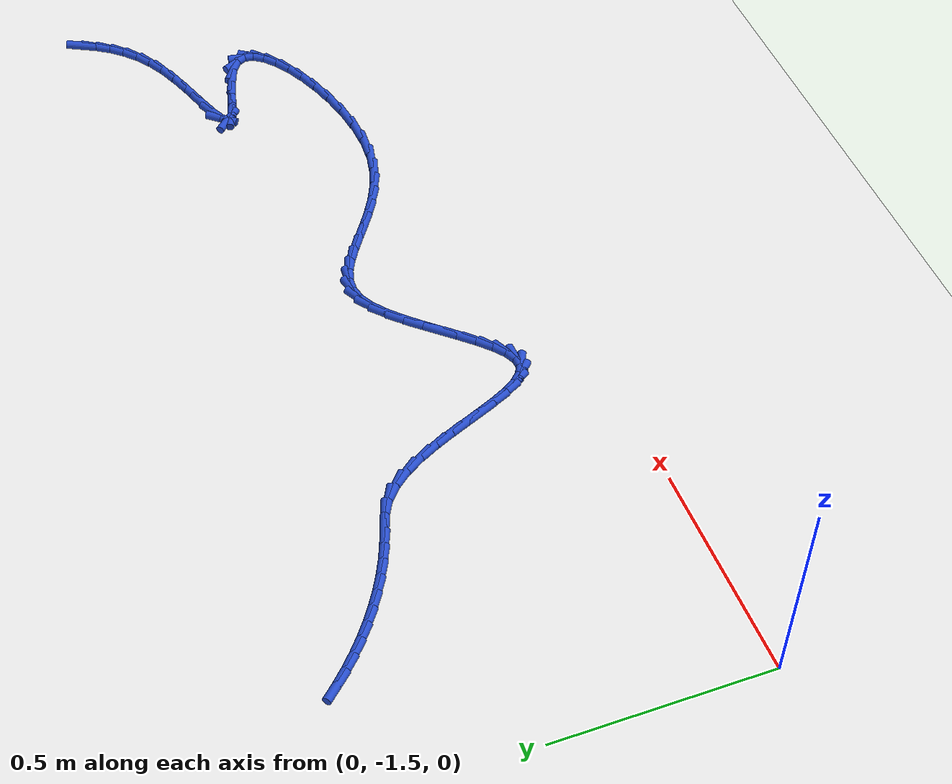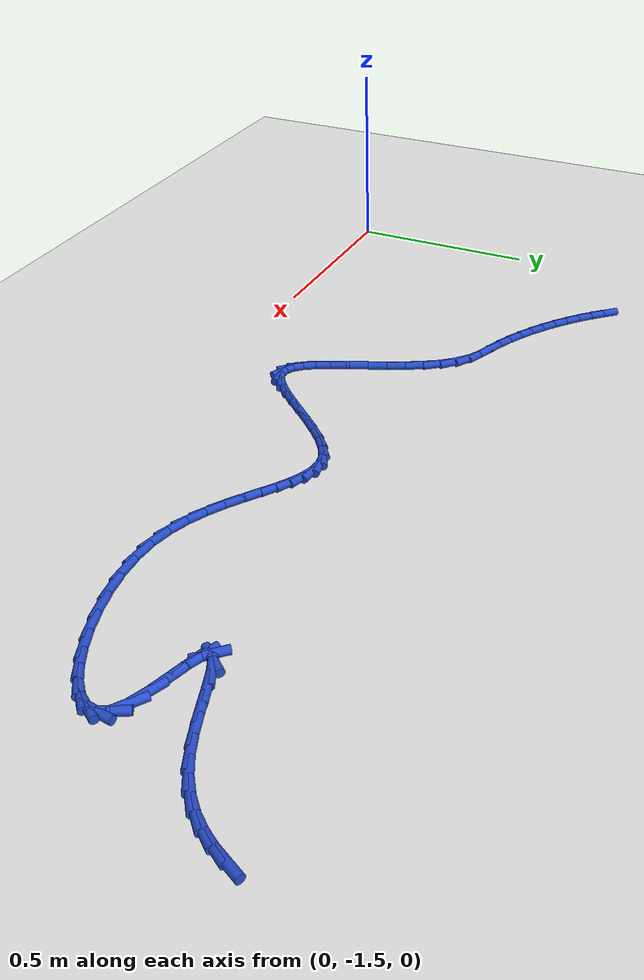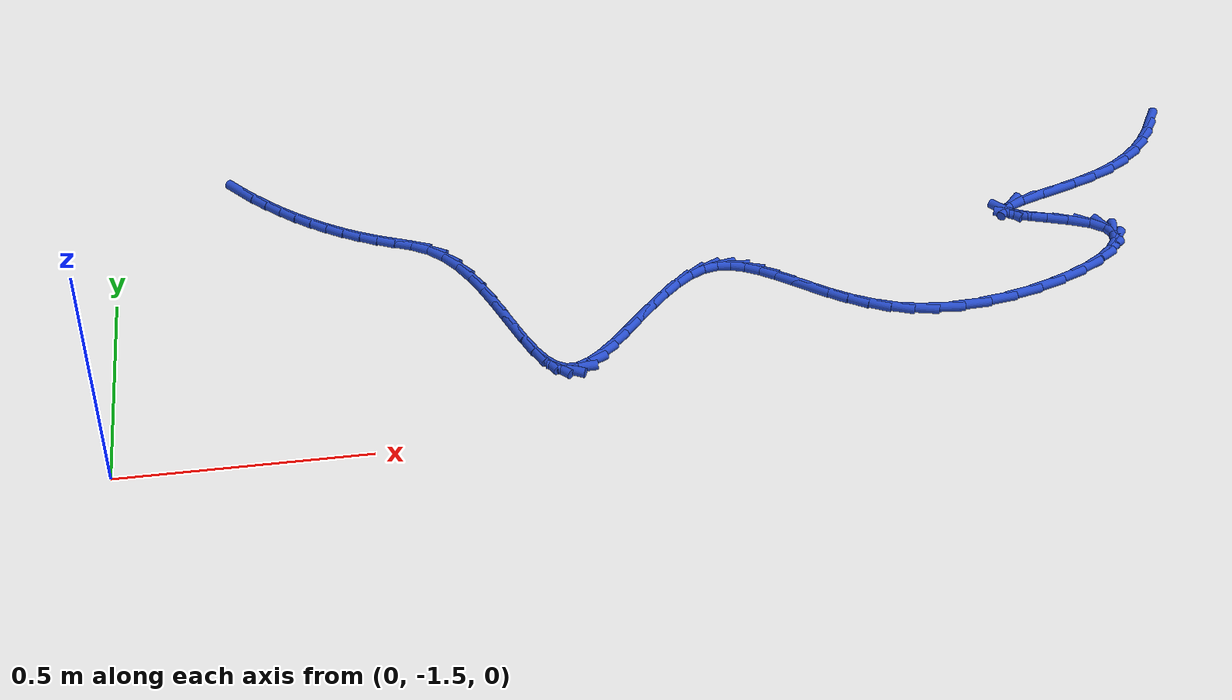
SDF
<sdf version="1.6">
 <world name="default">
  <model name="ground_plane">
   <static>1</static>
   <link name="link">
    <collision name="collision">
     <geometry><plane><normal>0 0 1</normal><size>100 100</size></plane></geometry>
     <surface><friction><ode><mu>100</mu><mu2>50</mu2></ode></friction></surface>
    </collision>
    <visual name="visual">
     <cast_shadows>0</cast_shadows>
     <geometry><plane><normal>0 0 1</normal><size>100 100</size></plane></geometry>
     <material>
      <script><uri>file://media/materials/scripts/gazebo.material</uri><name>Gazebo/WhiteGlow</name></script>
     </material>
    </visual>
   </link>
  </model>
  <model name="line">
   <link name="link_134">
    <pose>2.260077814180287 -0.6906924612458412 0.01 0 1.57 1.093525704193287</pose>
    <collision name="collision">
     <geometry><cylinder><radius>0.01</radius><length>0.08</length></cylinder></geometry>
    </collision>
    <visual name="visual">
     <material>
      <script><name>Gazebo/Blue</name><uri>file://media/materials/scripts/gazebo.material</uri></script>
     </material>
     <geometry><cylinder><radius>0.01</radius><length>0.08</length></cylinder></geometry>
    </visual>
   </link>
   <link name="link_135">
    <pose>2.243120066332404 -0.7234834476393496 0.01 0 1.57 0.9956169210976387</pose>
    <collision name="collision">
     <geometry><cylinder><radius>0.01</radius><length>0.08</length></cylinder></geometry>
    </collision>
    <visual name="visual">
     <material>
      <script><name>Gazebo/Blue</name><uri>file://media/materials/scripts/gazebo.material</uri></script>
     </material>
     <geometry><cylinder><radius>0.01</radius><length>0.08</length></cylinder></geometry>
    </visual>
   </link>
   <link name="link_136">
    <pose>2.222949267360653 -0.7545968063576652 0.01 0 1.57 0.8800103999019852</pose>
    <collision name="collision">
     <geometry><cylinder><radius>0.01</radius><length>0.08</length></cylinder></geometry>
    </collision>
    <visual name="visual">
     <material>
      <script><name>Gazebo/Blue</name><uri>file://media/materials/scripts/gazebo.material</uri></script>
     </material>
     <geometry><cylinder><radius>0.01</radius><length>0.08</length></cylinder></geometry>
    </visual>
   </link>
   <link name="link_137">
    <pose>2.1987522313748618 -0.7838677125144864 0.01 0 1.57 0.7539196230798381</pose>
    <collision name="collision">
     <geometry><cylinder><radius>0.01</radius><length>0.08</length></cylinder></geometry>
    </collision>
    <visual name="visual">
     <material>
      <script><name>Gazebo/Blue</name><uri>file://media/materials/scripts/gazebo.material</uri></script>
     </material>
     <geometry><cylinder><radius>0.01</radius><length>0.08</length></cylinder></geometry>
    </visual>
   </link>
   <link name="link_138">
    <pose>2.169715772484859 -0.8111313412235097 0.01 0 1.57 0.6262104765576222</pose>
    <collision name="collision">
     <geometry><cylinder><radius>0.01</radius><length>0.08</length></cylinder></geometry>
    </collision>
    <visual name="visual">
     <material>
      <script><name>Gazebo/Blue</name><uri>file://media/materials/scripts/gazebo.material</uri></script>
     </material>
     <geometry><cylinder><radius>0.01</radius><length>0.08</length></cylinder></geometry>
    </visual>
   </link>
   <link name="link_139">
    <pose>2.135026704800471 -0.8362228675984325 0.01 0 1.57 0.5050683813214808</pose>
    <collision name="collision">
     <geometry><cylinder><radius>0.01</radius><length>0.08</length></cylinder></geometry>
    </collision>
    <visual name="visual">
     <material>
      <script><name>Gazebo/Blue</name><uri>file://media/materials/scripts/gazebo.material</uri></script>
     </material>
     <geometry><cylinder><radius>0.01</radius><length>0.08</length></cylinder></geometry>
    </visual>
   </link>
   <link name="link_140">
    <pose>2.093871842431525 -0.8589774667529524 0.01 0 1.57 0.40317354967874675</pose>
    <collision name="collision">
     <geometry><cylinder><radius>0.01</radius><length>0.08</length></cylinder></geometry>
    </collision>
    <visual name="visual">
     <material>
      <script><name>Gazebo/Blue</name><uri>file://media/materials/scripts/gazebo.material</uri></script>
     </material>
     <geometry><cylinder><radius>0.01</radius><length>0.08</length></cylinder></geometry>
    </visual>
   </link>
   <link name="link_141">
    <pose>2.046233115714369 -0.8792972459943896 0.01 0 1.57 0.3458163592238009</pose>
    <collision name="collision">
     <geometry><cylinder><radius>0.01</radius><length>0.08</length></cylinder></geometry>
    </collision>
    <visual name="visual">
     <material>
      <script><name>Gazebo/Blue</name><uri>file://media/materials/scripts/gazebo.material</uri></script>
     </material>
     <geometry><cylinder><radius>0.01</radius><length>0.08</length></cylinder></geometry>
    </visual>
   </link>
   <link name="link_142">
    <pose>1.995961122814749 -0.8974099737291477 0.01 0 1.57 0.3268625783270204</pose>
    <collision name="collision">
     <geometry><cylinder><radius>0.01</radius><length>0.08</length></cylinder></geometry>
    </collision>
    <visual name="visual">
     <material>
      <script><name>Gazebo/Blue</name><uri>file://media/materials/scripts/gazebo.material</uri></script>
     </material>
     <geometry><cylinder><radius>0.01</radius><length>0.08</length></cylinder></geometry>
    </visual>
   </link>
   <link name="link_143">
    <pose>1.948081358380939 -0.9136423201294774 0.01 0 1.57 0.3480130493292259</pose>
    <collision name="collision">
     <geometry><cylinder><radius>0.01</radius><length>0.08</length></cylinder></geometry>
    </collision>
    <visual name="visual">
     <material>
      <script><name>Gazebo/Blue</name><uri>file://media/materials/scripts/gazebo.material</uri></script>
     </material>
     <geometry><cylinder><radius>0.01</radius><length>0.08</length></cylinder></geometry>
    </visual>
   </link>
   <link name="link_144">
    <pose>1.9076195859794642 -0.9283209780049353 0.01 0 1.57 0.44760740405013605</pose>
    <collision name="collision">
     <geometry><cylinder><radius>0.01</radius><length>0.08</length></cylinder></geometry>
    </collision>
    <visual name="visual">
     <material>
      <script><name>Gazebo/Blue</name><uri>file://media/materials/scripts/gazebo.material</uri></script>
     </material>
     <geometry><cylinder><radius>0.01</radius><length>0.08</length></cylinder></geometry>
    </visual>
   </link>
   <link name="link_145">
    <pose>1.8796015691768513 -0.9417726401650763 0.01 0 1.57 0.8718863694792514</pose>
    <collision name="collision">
     <geometry><cylinder><radius>0.01</radius><length>0.08</length></cylinder></geometry>
    </collision>
    <visual name="visual">
     <material>
      <script><name>Gazebo/Blue</name><uri>file://media/materials/scripts/gazebo.material</uri></script>
     </material>
     <geometry><cylinder><radius>0.01</radius><length>0.08</length></cylinder></geometry>
    </visual>
   </link>
   <link name="link_146">
    <pose>1.8690530715396236 -0.9543239994194561 0.01 0 1.57 -0.8100361347767994</pose>
    <collision name="collision">
     <geometry><cylinder><radius>0.01</radius><length>0.08</length></cylinder></geometry>
    </collision>
    <visual name="visual">
     <material>
      <script><name>Gazebo/Blue</name><uri>file://media/materials/scripts/gazebo.material</uri></script>
     </material>
     <geometry><cylinder><radius>0.01</radius><length>0.08</length></cylinder></geometry>
    </visual>
   </link>
   <link name="link_147">
    <pose>1.8804691249956074 -0.9663169192182226 0.01 0 1.57 -0.37304710965704696</pose>
    <collision name="collision">
     <geometry><cylinder><radius>0.01</radius><length>0.08</length></cylinder></geometry>
    </collision>
    <visual name="visual">
     <material>
      <script><name>Gazebo/Blue</name><uri>file://media/materials/scripts/gazebo.material</uri></script>
     </material>
     <geometry><cylinder><radius>0.01</radius><length>0.08</length></cylinder></geometry>
    </visual>
   </link>
   <link name="link_148">
    <pose>1.9110889003690217 -0.9783006673811888 0.01 0 1.57 -0.29434209963864494</pose>
    <collision name="collision">
     <geometry><cylinder><radius>0.01</radius><length>0.08</length></cylinder></geometry>
    </collision>
    <visual name="visual">
     <material>
      <script><name>Gazebo/Blue</name><uri>file://media/materials/scripts/gazebo.material</uri></script>
     </material>
     <geometry><cylinder><radius>0.01</radius><length>0.08</length></cylinder></geometry>
    </visual>
   </link>
   <link name="link_149">
    <pose>1.9528970394081127 -0.9909747092409539 0.01 0 1.57 -0.3038434600753206</pose>
    <collision name="collision">
     <geometry><cylinder><radius>0.01</radius><length>0.08</length></cylinder></geometry>
    </collision>
    <visual name="visual">
     <material>
      <script><name>Gazebo/Blue</name><uri>file://media/materials/scripts/gazebo.material</uri></script>
     </material>
     <geometry><cylinder><radius>0.01</radius><length>0.08</length></cylinder></geometry>
    </visual>
   </link>
   <link name="link_150">
    <pose>1.9977608323106262 -1.0050418645527033 0.01 0 1.57 -0.38587677177275365</pose>
    <collision name="collision">
     <geometry><cylinder><radius>0.01</radius><length>0.08</length></cylinder></geometry>
    </collision>
    <visual name="visual">
     <material>
      <script><name>Gazebo/Blue</name><uri>file://media/materials/scripts/gazebo.material</uri></script>
     </material>
     <geometry><cylinder><radius>0.01</radius><length>0.08</length></cylinder></geometry>
    </visual>
   </link>
   <link name="link_151">
    <pose>2.037547569274309 -1.021204953071622 0.01 0 1.57 -0.6150409497810844</pose>
    <collision name="collision">
     <geometry><cylinder><radius>0.01</radius><length>0.08</length></cylinder></geometry>
    </collision>
    <visual name="visual">
     <material>
      <script><name>Gazebo/Blue</name><uri>file://media/materials/scripts/gazebo.material</uri></script>
     </material>
     <geometry><cylinder><radius>0.01</radius><length>0.08</length></cylinder></geometry>
    </visual>
   </link>
   <link name="link_152">
    <pose>2.0643407982642725 -1.0401329987972223 0.01 0 1.57 -1.1120254504128737</pose>
    <collision name="collision">
     <geometry><cylinder><radius>0.01</radius><length>0.08</length></cylinder></geometry>
    </collision>
    <visual name="visual">
     <material>
      <script><name>Gazebo/Blue</name><uri>file://media/materials/scripts/gazebo.material</uri></script>
     </material>
     <geometry><cylinder><radius>0.01</radius><length>0.08</length></cylinder></geometry>
    </visual>
   </link>
   <link name="link_153">
    <pose>2.0750159523519907 -1.0617461722647676 0.01 0 1.57 1.4072876243334569</pose>
    <collision name="collision">
     <geometry><cylinder><radius>0.01</radius><length>0.08</length></cylinder></geometry>
    </collision>
    <visual name="visual">
     <material>
      <script><name>Gazebo/Blue</name><uri>file://media/materials/scripts/gazebo.material</uri></script>
     </material>
     <geometry><cylinder><radius>0.01</radius><length>0.08</length></cylinder></geometry>
    </visual>
   </link>
   <link name="link_154">
    <pose>2.0711413446693876 -1.0852312625922718 0.01 0 1.57 0.9738792158407034</pose>
    <collision name="collision">
     <geometry><cylinder><radius>0.01</radius><length>0.08</length></cylinder></geometry>
    </collision>
    <visual name="visual">
     <material>
      <script><name>Gazebo/Blue</name><uri>file://media/materials/scripts/gazebo.material</uri></script>
     </material>
     <geometry><cylinder><radius>0.01</radius><length>0.08</length></cylinder></geometry>
    </visual>
   </link>
   <link name="link_155">
    <pose>2.054481742401009 -1.109744357974294 0.01 0 1.57 0.7285139925244182</pose>
    <collision name="collision">
     <geometry><cylinder><radius>0.01</radius><length>0.08</length></cylinder></geometry>
    </collision>
    <visual name="visual">
     <material>
      <script><name>Gazebo/Blue</name><uri>file://media/materials/scripts/gazebo.material</uri></script>
     </material>
     <geometry><cylinder><radius>0.01</radius><length>0.08</length></cylinder></geometry>
    </visual>
   </link>
   <link name="link_156">
    <pose>2.026801912731399 -1.1344415466053925 0.01 0 1.57 0.5769351878763087</pose>
    <collision name="collision">
     <geometry><cylinder><radius>0.01</radius><length>0.08</length></cylinder></geometry>
    </collision>
    <visual name="visual">
     <material>
      <script><name>Gazebo/Blue</name><uri>file://media/materials/scripts/gazebo.material</uri></script>
     </material>
     <geometry><cylinder><radius>0.01</radius><length>0.08</length></cylinder></geometry>
    </visual>
   </link>
   <link name="link_157">
    <pose>1.9898666228451025 -1.158478916680125 0.01 0 1.57 0.46940499047257583</pose>
    <collision name="collision">
     <geometry><cylinder><radius>0.01</radius><length>0.08</length></cylinder></geometry>
    </collision>
    <visual name="visual">
     <material>
      <script><name>Gazebo/Blue</name><uri>file://media/materials/scripts/gazebo.material</uri></script>
     </material>
     <geometry><cylinder><radius>0.01</radius><length>0.08</length></cylinder></geometry>
    </visual>
   </link>
   <link name="link_158">
    <pose>1.9454406399266642 -1.181012556393049 0.01 0 1.57 0.38265718919222375</pose>
    <collision name="collision">
     <geometry><cylinder><radius>0.01</radius><length>0.08</length></cylinder></geometry>
    </collision>
    <visual name="visual">
     <material>
      <script><name>Gazebo/Blue</name><uri>file://media/materials/scripts/gazebo.material</uri></script>
     </material>
     <geometry><cylinder><radius>0.01</radius><length>0.08</length></cylinder></geometry>
    </visual>
   </link>
   <link name="link_159">
    <pose>1.8952887311606288 -1.2011985539387218 0.01 0 1.57 0.30430029285606114</pose>
    <collision name="collision">
     <geometry><cylinder><radius>0.01</radius><length>0.08</length></cylinder></geometry>
    </collision>
    <visual name="visual">
     <material>
      <script><name>Gazebo/Blue</name><uri>file://media/materials/scripts/gazebo.material</uri></script>
     </material>
     <geometry><cylinder><radius>0.01</radius><length>0.08</length></cylinder></geometry>
    </visual>
   </link>
   <link name="link_160">
    <pose>1.841175663731542 -1.218192997511703 0.01 0 1.57 0.22619998257850557</pose>
    <collision name="collision">
     <geometry><cylinder><radius>0.01</radius><length>0.08</length></cylinder></geometry>
    </collision>
    <visual name="visual">
     <material>
      <script><name>Gazebo/Blue</name><uri>file://media/materials/scripts/gazebo.material</uri></script>
     </material>
     <geometry><cylinder><radius>0.01</radius><length>0.08</length></cylinder></geometry>
    </visual>
   </link>
   <link name="link_161">
    <pose>1.7848662048239474 -1.231151975306549 0.01 0 1.57 0.14144332502048726</pose>
    <collision name="collision">
     <geometry><cylinder><radius>0.01</radius><length>0.08</length></cylinder></geometry>
    </collision>
    <visual name="visual">
     <material>
      <script><name>Gazebo/Blue</name><uri>file://media/materials/scripts/gazebo.material</uri></script>
     </material>
     <geometry><cylinder><radius>0.01</radius><length>0.08</length></cylinder></geometry>
    </visual>
   </link>
   <link name="link_162">
    <pose>1.7281251216223885 -1.2392315755178192 0.01 0 1.57 0.042500982297818304</pose>
    <collision name="collision">
     <geometry><cylinder><radius>0.01</radius><length>0.08</length></cylinder></geometry>
    </collision>
    <visual name="visual">
     <material>
      <script><name>Gazebo/Blue</name><uri>file://media/materials/scripts/gazebo.material</uri></script>
     </material>
     <geometry><cylinder><radius>0.01</radius><length>0.08</length></cylinder></geometry>
    </visual>
   </link>
   <link name="link_163">
    <pose>1.672717181311413 -1.2415878863400696 0.01 0 1.57 -0.08016382762010067</pose>
    <collision name="collision">
     <geometry><cylinder><radius>0.01</radius><length>0.08</length></cylinder></geometry>
    </collision>
    <visual name="visual">
     <material>
      <script><name>Gazebo/Blue</name><uri>file://media/materials/scripts/gazebo.material</uri></script>
     </material>
     <geometry><cylinder><radius>0.01</radius><length>0.08</length></cylinder></geometry>
    </visual>
   </link>
   <link name="link_164">
    <pose>1.6203994210405437 -1.2373848874058684 0.01 0 1.57 -0.2215063734440339</pose>
    <collision name="collision">
     <geometry><cylinder><radius>0.01</radius><length>0.08</length></cylinder></geometry>
    </collision>
    <visual name="visual">
     <material>
      <script><name>Gazebo/Blue</name><uri>file://media/materials/scripts/gazebo.material</uri></script>
     </material>
     <geometry><cylinder><radius>0.01</radius><length>0.08</length></cylinder></geometry>
    </visual>
   </link>
   <link name="link_165">
    <pose>1.5722002867480491 -1.2265303625300619 0.01 0 1.57 -0.35118830111972077</pose>
    <collision name="collision">
     <geometry><cylinder><radius>0.01</radius><length>0.08</length></cylinder></geometry>
    </collision>
    <visual name="visual">
     <material>
      <script><name>Gazebo/Blue</name><uri>file://media/materials/scripts/gazebo.material</uri></script>
     </material>
     <geometry><cylinder><radius>0.01</radius><length>0.08</length></cylinder></geometry>
    </visual>
   </link>
   <link name="link_166">
    <pose>1.527832650913773 -1.2102751381354144 0.01 0 1.57 -0.4594078575259606</pose>
    <collision name="collision">
     <geometry><cylinder><radius>0.01</radius><length>0.08</length></cylinder></geometry>
    </collision>
    <visual name="visual">
     <material>
      <script><name>Gazebo/Blue</name><uri>file://media/materials/scripts/gazebo.material</uri></script>
     </material>
     <geometry><cylinder><radius>0.01</radius><length>0.08</length></cylinder></geometry>
    </visual>
   </link>
   <link name="link_167">
    <pose>1.4868712489977087 -1.1900110619629676 0.01 0 1.57 -0.5422145541682972</pose>
    <collision name="collision">
     <geometry><cylinder><radius>0.01</radius><length>0.08</length></cylinder></geometry>
    </collision>
    <visual name="visual">
     <material>
      <script><name>Gazebo/Blue</name><uri>file://media/materials/scripts/gazebo.material</uri></script>
     </material>
     <geometry><cylinder><radius>0.01</radius><length>0.08</length></cylinder></geometry>
    </visual>
   </link>
   <link name="link_168">
    <pose>1.4488908164598455 -1.1671299817537615 0.01 0 1.57 -0.5975128736025582</pose>
    <collision name="collision">
     <geometry><cylinder><radius>0.01</radius><length>0.08</length></cylinder></geometry>
    </collision>
    <visual name="visual">
     <material>
      <script><name>Gazebo/Blue</name><uri>file://media/materials/scripts/gazebo.material</uri></script>
     </material>
     <geometry><cylinder><radius>0.01</radius><length>0.08</length></cylinder></geometry>
    </visual>
   </link>
   <link name="link_169">
    <pose>1.4134660887601742 -1.143023745248836 0.01 0 1.57 -0.6233830098594286</pose>
    <collision name="collision">
     <geometry><cylinder><radius>0.01</radius><length>0.08</length></cylinder></geometry>
    </collision>
    <visual name="visual">
     <material>
      <script><name>Gazebo/Blue</name><uri>file://media/materials/scripts/gazebo.material</uri></script>
     </material>
     <geometry><cylinder><radius>0.01</radius><length>0.08</length></cylinder></geometry>
    </visual>
   </link>
   <link name="link_170">
    <pose>1.3801718013586848 -1.1190842001892318 0.01 0 1.57 -0.6164104462927964</pose>
    <collision name="collision">
     <geometry><cylinder><radius>0.01</radius><length>0.08</length></cylinder></geometry>
    </collision>
    <visual name="visual">
     <material>
      <script><name>Gazebo/Blue</name><uri>file://media/materials/scripts/gazebo.material</uri></script>
     </material>
     <geometry><cylinder><radius>0.01</radius><length>0.08</length></cylinder></geometry>
    </visual>
   </link>
   <link name="link_171">
    <pose>1.34858268971537 -1.09670319431599 0.01 0 1.57 -0.570078913948525</pose>
    <collision name="collision">
     <geometry><cylinder><radius>0.01</radius><length>0.08</length></cylinder></geometry>
    </collision>
    <visual name="visual">
     <material>
      <script><name>Gazebo/Blue</name><uri>file://media/materials/scripts/gazebo.material</uri></script>
     </material>
     <geometry><cylinder><radius>0.01</radius><length>0.08</length></cylinder></geometry>
    </visual>
   </link>
   <link name="link_172">
    <pose>1.31827348929022 -1.0772725753701509 0.01 0 1.57 -0.47340728949423866</pose>
    <collision name="collision">
     <geometry><cylinder><radius>0.01</radius><length>0.08</length></cylinder></geometry>
    </collision>
    <visual name="visual">
     <material>
      <script><name>Gazebo/Blue</name><uri>file://media/materials/scripts/gazebo.material</uri></script>
     </material>
     <geometry><cylinder><radius>0.01</radius><length>0.08</length></cylinder></geometry>
    </visual>
   </link>
   <link name="link_173">
    <pose>1.288818935543225 -1.0621841910927543 0.01 0 1.57 -0.31177195960595694</pose>
    <collision name="collision">
     <geometry><cylinder><radius>0.01</radius><length>0.08</length></cylinder></geometry>
    </collision>
    <visual name="visual">
     <material>
      <script><name>Gazebo/Blue</name><uri>file://media/materials/scripts/gazebo.material</uri></script>
     </material>
     <geometry><cylinder><radius>0.01</radius><length>0.08</length></cylinder></geometry>
    </visual>
   </link>
   <link name="link_174">
    <pose>1.2597937639343761 -1.0528298892248413 0.01 0 1.57 -0.07663428547544678</pose>
    <collision name="collision">
     <geometry><cylinder><radius>0.01</radius><length>0.08</length></cylinder></geometry>
    </collision>
    <visual name="visual">
     <material>
      <script><name>Gazebo/Blue</name><uri>file://media/materials/scripts/gazebo.material</uri></script>
     </material>
     <geometry><cylinder><radius>0.01</radius><length>0.08</length></cylinder></geometry>
    </visual>
   </link>
   <link name="link_175">
    <pose>1.2307727099236634 -1.0506015175074521 0.01 0 1.57 0.21045556353992523</pose>
    <collision name="collision">
     <geometry><cylinder><radius>0.01</radius><length>0.08</length></cylinder></geometry>
    </collision>
    <visual name="visual">
     <material>
      <script><name>Gazebo/Blue</name><uri>file://media/materials/scripts/gazebo.material</uri></script>
     </material>
     <geometry><cylinder><radius>0.01</radius><length>0.08</length></cylinder></geometry>
    </visual>
   </link>
   <link name="link_176">
    <pose>1.2013305089710793 -1.0568909236816273 0.01 0 1.57 0.4791653981641039</pose>
    <collision name="collision">
     <geometry><cylinder><radius>0.01</radius><length>0.08</length></cylinder></geometry>
    </collision>
    <visual name="visual">
     <material>
      <script><name>Gazebo/Blue</name><uri>file://media/materials/scripts/gazebo.material</uri></script>
     </material>
     <geometry><cylinder><radius>0.01</radius><length>0.08</length></cylinder></geometry>
    </visual>
   </link>
   <link name="link_177">
    <pose>1.1711502791020694 -1.072571077078904 0.01 0 1.57 0.6550546164441563</pose>
    <collision name="collision">
     <geometry><cylinder><radius>0.01</radius><length>0.08</length></cylinder></geometry>
    </collision>
    <visual name="visual">
     <material>
      <script><name>Gazebo/Blue</name><uri>file://media/materials/scripts/gazebo.material</uri></script>
     </material>
     <geometry><cylinder><radius>0.01</radius><length>0.08</length></cylinder></geometry>
    </visual>
   </link>
   <link name="link_178">
    <pose>1.140399976888232 -1.0961937964598278 0.01 0 1.57 0.7598009761798901</pose>
    <collision name="collision">
     <geometry><cylinder><radius>0.01</radius><length>0.08</length></cylinder></geometry>
    </collision>
    <visual name="visual">
     <material>
      <script><name>Gazebo/Blue</name><uri>file://media/materials/scripts/gazebo.material</uri></script>
     </material>
     <geometry><cylinder><radius>0.01</radius><length>0.08</length></cylinder></geometry>
    </visual>
   </link>
   <link name="link_179">
    <pose>1.1093830782325493 -1.1256621056903924 0.01 0 1.57 0.8202281186090637</pose>
    <collision name="collision">
     <geometry><cylinder><radius>0.01</radius><length>0.08</length></cylinder></geometry>
    </collision>
    <visual name="visual">
     <material>
      <script><name>Gazebo/Blue</name><uri>file://media/materials/scripts/gazebo.material</uri></script>
     </material>
     <geometry><cylinder><radius>0.01</radius><length>0.08</length></cylinder></geometry>
    </visual>
   </link>
   <link name="link_180">
    <pose>1.0784030653181953 -1.158878998570368 0.01 0 1.57 0.849862936586433</pose>
    <collision name="collision">
     <geometry><cylinder><radius>0.01</radius><length>0.08</length></cylinder></geometry>
    </collision>
    <visual name="visual">
     <material>
      <script><name>Gazebo/Blue</name><uri>file://media/materials/scripts/gazebo.material</uri></script>
     </material>
     <geometry><cylinder><radius>0.01</radius><length>0.08</length></cylinder></geometry>
    </visual>
   </link>
   <link name="link_181">
    <pose>1.0477634203283401 -1.1937474688995269 0.01 0 1.57 0.8540162304549302</pose>
    <collision name="collision">
     <geometry><cylinder><radius>0.01</radius><length>0.08</length></cylinder></geometry>
    </collision>
    <visual name="visual">
     <material>
      <script><name>Gazebo/Blue</name><uri>file://media/materials/scripts/gazebo.material</uri></script>
     </material>
     <geometry><cylinder><radius>0.01</radius><length>0.08</length></cylinder></geometry>
    </visual>
   </link>
   <link name="link_182">
    <pose>1.0177676254461565 -1.22817051047764 0.01 0 1.57 0.8318473701227223</pose>
    <collision name="collision">
     <geometry><cylinder><radius>0.01</radius><length>0.08</length></cylinder></geometry>
    </collision>
    <visual name="visual">
     <material>
      <script><name>Gazebo/Blue</name><uri>file://media/materials/scripts/gazebo.material</uri></script>
     </material>
     <geometry><cylinder><radius>0.01</radius><length>0.08</length></cylinder></geometry>
    </visual>
   </link>
   <link name="link_183">
    <pose>0.988719162854816 -1.2600511171044788 0.01 0 1.57 0.7752877768477786</pose>
    <collision name="collision">
     <geometry><cylinder><radius>0.01</radius><length>0.08</length></cylinder></geometry>
    </collision>
    <visual name="visual">
     <material>
      <script><name>Gazebo/Blue</name><uri>file://media/materials/scripts/gazebo.material</uri></script>
     </material>
     <geometry><cylinder><radius>0.01</radius><length>0.08</length></cylinder></geometry>
    </visual>
   </link>
   <link name="link_184">
    <pose>0.9609215147374897 -1.2872922825798159 0.01 0 1.57 0.6632526771141637</pose>
    <collision name="collision">
     <geometry><cylinder><radius>0.01</radius><length>0.08</length></cylinder></geometry>
    </collision>
    <visual name="visual">
     <material>
      <script><name>Gazebo/Blue</name><uri>file://media/materials/scripts/gazebo.material</uri></script>
     </material>
     <geometry><cylinder><radius>0.01</radius><length>0.08</length></cylinder></geometry>
    </visual>
   </link>
   <link name="link_185">
    <pose>0.9346781632773509 -1.3077970007034205 0.01 0 1.57 0.44639250683647097</pose>
    <collision name="collision">
     <geometry><cylinder><radius>0.01</radius><length>0.08</length></cylinder></geometry>
    </collision>
    <visual name="visual">
     <material>
      <script><name>Gazebo/Blue</name><uri>file://media/materials/scripts/gazebo.material</uri></script>
     </material>
     <geometry><cylinder><radius>0.01</radius><length>0.08</length></cylinder></geometry>
    </visual>
   </link>
   <link name="link_186">
    <pose>0.9102925906575712 -1.3194682652750653 0.01 0 1.57 0.03622957111138822</pose>
    <collision name="collision">
     <geometry><cylinder><radius>0.01</radius><length>0.08</length></cylinder></geometry>
    </collision>
    <visual name="visual">
     <material>
      <script><name>Gazebo/Blue</name><uri>file://media/materials/scripts/gazebo.material</uri></script>
     </material>
     <geometry><cylinder><radius>0.01</radius><length>0.08</length></cylinder></geometry>
    </visual>
   </link>
   <link name="link_187">
    <pose>0.8880543527877633 -1.3202742997883088 0.01 0 1.57 -0.47499812535406755</pose>
    <collision name="collision">
     <geometry><cylinder><radius>0.01</radius><length>0.08</length></cylinder></geometry>
    </collision>
    <visual name="visual">
     <material>
      <script><name>Gazebo/Blue</name><uri>file://media/materials/scripts/gazebo.material</uri></script>
     </material>
     <geometry><cylinder><radius>0.01</radius><length>0.08</length></cylinder></geometry>
    </visual>
   </link>
   <link name="link_188">
    <pose>0.8678860057845245 -1.3099023291636365 0.01 0 1.57 -0.8227487343417692</pose>
    <collision name="collision">
     <geometry><cylinder><radius>0.01</radius><length>0.08</length></cylinder></geometry>
    </collision>
    <visual name="visual">
     <material>
      <script><name>Gazebo/Blue</name><uri>file://media/materials/scripts/gazebo.material</uri></script>
     </material>
     <geometry><cylinder><radius>0.01</radius><length>0.08</length></cylinder></geometry>
    </visual>
   </link>
   <link name="link_189">
    <pose>0.8493151216021689 -1.2898896565817948 0.01 0 1.57 -1.0134805519124364</pose>
    <collision name="collision">
     <geometry><cylinder><radius>0.01</radius><length>0.08</length></cylinder></geometry>
    </collision>
    <visual name="visual">
     <material>
      <script><name>Gazebo/Blue</name><uri>file://media/materials/scripts/gazebo.material</uri></script>
     </material>
     <geometry><cylinder><radius>0.01</radius><length>0.08</length></cylinder></geometry>
    </visual>
   </link>
   <link name="link_190">
    <pose>0.8318497395716151 -1.261865074668822 0.01 0 1.57 -1.1153665813827056</pose>
    <collision name="collision">
     <geometry><cylinder><radius>0.01</radius><length>0.08</length></cylinder></geometry>
    </collision>
    <visual name="visual">
     <material>
      <script><name>Gazebo/Blue</name><uri>file://media/materials/scripts/gazebo.material</uri></script>
     </material>
     <geometry><cylinder><radius>0.01</radius><length>0.08</length></cylinder></geometry>
    </visual>
   </link>
   <link name="link_191">
    <pose>0.8149978990237823 -1.2274573760507583 0.01 0 1.57 -1.1670584751658954</pose>
    <collision name="collision">
     <geometry><cylinder><radius>0.01</radius><length>0.08</length></cylinder></geometry>
    </collision>
    <visual name="visual">
     <material>
      <script><name>Gazebo/Blue</name><uri>file://media/materials/scripts/gazebo.material</uri></script>
     </material>
     <geometry><cylinder><radius>0.01</radius><length>0.08</length></cylinder></geometry>
    </visual>
   </link>
   <link name="link_192">
    <pose>0.7982676392895888 -1.188295353353641 0.01 0 1.57 -1.1865117017534481</pose>
    <collision name="collision">
     <geometry><cylinder><radius>0.01</radius><length>0.08</length></cylinder></geometry>
    </collision>
    <visual name="visual">
     <material>
      <script><name>Gazebo/Blue</name><uri>file://media/materials/scripts/gazebo.material</uri></script>
     </material>
     <geometry><cylinder><radius>0.01</radius><length>0.08</length></cylinder></geometry>
    </visual>
   </link>
   <link name="link_193">
    <pose>0.7811669996999551 -1.146007799203513 0.01 0 1.57 -1.1814758270986385</pose>
    <collision name="collision">
     <geometry><cylinder><radius>0.01</radius><length>0.08</length></cylinder></geometry>
    </collision>
    <visual name="visual">
     <material>
      <script><name>Gazebo/Blue</name><uri>file://media/materials/scripts/gazebo.material</uri></script>
     </material>
     <geometry><cylinder><radius>0.01</radius><length>0.08</length></cylinder></geometry>
    </visual>
   </link>
   <link name="link_194">
    <pose>0.7632040195857996 -1.1022235062264114 0.01 0 1.57 -1.154174552740944</pose>
    <collision name="collision">
     <geometry><cylinder><radius>0.01</radius><length>0.08</length></cylinder></geometry>
    </collision>
    <visual name="visual">
     <material>
      <script><name>Gazebo/Blue</name><uri>file://media/materials/scripts/gazebo.material</uri></script>
     </material>
     <geometry><cylinder><radius>0.01</radius><length>0.08</length></cylinder></geometry>
    </visual>
   </link>
   <link name="link_195">
    <pose>0.7438867382780415 -1.0585712670483758 0.01 0 1.57 -1.1029971567979153</pose>
    <collision name="collision">
     <geometry><cylinder><radius>0.01</radius><length>0.08</length></cylinder></geometry>
    </collision>
    <visual name="visual">
     <material>
      <script><name>Gazebo/Blue</name><uri>file://media/materials/scripts/gazebo.material</uri></script>
     </material>
     <geometry><cylinder><radius>0.01</radius><length>0.08</length></cylinder></geometry>
    </visual>
   </link>
   <link name="link_196">
    <pose>0.7227231951075996 -1.0166798742954455 0.01 0 1.57 -1.022759254259136</pose>
    <collision name="collision">
     <geometry><cylinder><radius>0.01</radius><length>0.08</length></cylinder></geometry>
    </collision>
    <visual name="visual">
     <material>
      <script><name>Gazebo/Blue</name><uri>file://media/materials/scripts/gazebo.material</uri></script>
     </material>
     <geometry><cylinder><radius>0.01</radius><length>0.08</length></cylinder></geometry>
    </visual>
   </link>
   <link name="link_197">
    <pose>0.699221429405393 -0.9781781205936594 0.01 0 1.57 -0.9043909943144484</pose>
    <collision name="collision">
     <geometry><cylinder><radius>0.01</radius><length>0.08</length></cylinder></geometry>
    </collision>
    <visual name="visual">
     <material>
      <script><name>Gazebo/Blue</name><uri>file://media/materials/scripts/gazebo.material</uri></script>
     </material>
     <geometry><cylinder><radius>0.01</radius><length>0.08</length></cylinder></geometry>
    </visual>
   </link>
   <link name="link_198">
    <pose>0.6728894805023419 -0.9446947985690585 0.01 0 1.57 -0.7355548011855529</pose>
    <collision name="collision">
     <geometry><cylinder><radius>0.01</radius><length>0.08</length></cylinder></geometry>
    </collision>
    <visual name="visual">
     <material>
      <script><name>Gazebo/Blue</name><uri>file://media/materials/scripts/gazebo.material</uri></script>
     </material>
     <geometry><cylinder><radius>0.01</radius><length>0.08</length></cylinder></geometry>
    </visual>
   </link>
   <link name="link_199">
    <pose>0.6432353877293646 -0.9178587008476813 0.01 0 1.57 -0.5216070128041066</pose>
    <collision name="collision">
     <geometry><cylinder><radius>0.01</radius><length>0.08</length></cylinder></geometry>
    </collision>
    <visual name="visual">
     <material>
      <script><name>Gazebo/Blue</name><uri>file://media/materials/scripts/gazebo.material</uri></script>
     </material>
     <geometry><cylinder><radius>0.01</radius><length>0.08</length></cylinder></geometry>
    </visual>
   </link>
   <link name="link_200">
    <pose>0.609987517551182 -0.8987512285758599 0.01 0 1.57 -0.3821929250560968</pose>
    <collision name="collision">
     <geometry><cylinder><radius>0.01</radius><length>0.08</length></cylinder></geometry>
    </collision>
    <visual name="visual">
     <material>
      <script><name>Gazebo/Blue</name><uri>file://media/materials/scripts/gazebo.material</uri></script>
     </material>
     <geometry><cylinder><radius>0.01</radius><length>0.08</length></cylinder></geometry>
    </visual>
   </link>
   <link name="link_201">
    <pose>0.5744750241639097 -0.8844767077668461 0.01 0 1.57 -0.3724326378546771</pose>
    <collision name="collision">
     <geometry><cylinder><radius>0.01</radius><length>0.08</length></cylinder></geometry>
    </collision>
    <visual name="visual">
     <material>
      <script><name>Gazebo/Blue</name><uri>file://media/materials/scripts/gazebo.material</uri></script>
     </material>
     <geometry><cylinder><radius>0.01</radius><length>0.08</length></cylinder></geometry>
    </visual>
   </link>
   <link name="link_202">
    <pose>0.5386869715687843 -0.8704955893553777 0.01 0 1.57 -0.4256869035254172</pose>
    <collision name="collision">
     <geometry><cylinder><radius>0.01</radius><length>0.08</length></cylinder></geometry>
    </collision>
    <visual name="visual">
     <material>
      <script><name>Gazebo/Blue</name><uri>file://media/materials/scripts/gazebo.material</uri></script>
     </material>
     <geometry><cylinder><radius>0.01</radius><length>0.08</length></cylinder></geometry>
    </visual>
   </link>
   <link name="link_203">
    <pose>0.5036360083310475 -0.8546030966094108 0.01 0 1.57 -0.4793488649664526</pose>
    <collision name="collision">
     <geometry><cylinder><radius>0.01</radius><length>0.08</length></cylinder></geometry>
    </collision>
    <visual name="visual">
     <material>
      <script><name>Gazebo/Blue</name><uri>file://media/materials/scripts/gazebo.material</uri></script>
     </material>
     <geometry><cylinder><radius>0.01</radius><length>0.08</length></cylinder></geometry>
    </visual>
   </link>
   <link name="link_204">
    <pose>0.4694076146193841 -0.8368117420291467 0.01 0 1.57 -0.531031646864851</pose>
    <collision name="collision">
     <geometry><cylinder><radius>0.01</radius><length>0.08</length></cylinder></geometry>
    </collision>
    <visual name="visual">
     <material>
      <script><name>Gazebo/Blue</name><uri>file://media/materials/scripts/gazebo.material</uri></script>
     </material>
     <geometry><cylinder><radius>0.01</radius><length>0.08</length></cylinder></geometry>
    </visual>
   </link>
   <link name="link_205">
    <pose>0.43605083140445555 -0.8172211811210721 0.01 0 1.57 -0.5808403970430643</pose>
    <collision name="collision">
     <geometry><cylinder><radius>0.01</radius><length>0.08</length></cylinder></geometry>
    </collision>
    <visual name="visual">
     <material>
      <script><name>Gazebo/Blue</name><uri>file://media/materials/scripts/gazebo.material</uri></script>
     </material>
     <geometry><cylinder><radius>0.01</radius><length>0.08</length></cylinder></geometry>
    </visual>
   </link>
   <link name="link_206">
    <pose>0.40361469965692276 -0.7959310693916727 0.01 0 1.57 -0.6289069390601737</pose>
    <collision name="collision">
     <geometry><cylinder><radius>0.01</radius><length>0.08</length></cylinder></geometry>
    </collision>
    <visual name="visual">
     <material>
      <script><name>Gazebo/Blue</name><uri>file://media/materials/scripts/gazebo.material</uri></script>
     </material>
     <geometry><cylinder><radius>0.01</radius><length>0.08</length></cylinder></geometry>
    </visual>
   </link>
   <link name="link_207">
    <pose>0.372148260347449 -0.7730410623474362 0.01 0 1.57 -0.6753830997419301</pose>
    <collision name="collision">
     <geometry><cylinder><radius>0.01</radius><length>0.08</length></cylinder></geometry>
    </collision>
    <visual name="visual">
     <material>
      <script><name>Gazebo/Blue</name><uri>file://media/materials/scripts/gazebo.material</uri></script>
     </material>
     <geometry><cylinder><radius>0.01</radius><length>0.08</length></cylinder></geometry>
    </visual>
   </link>
   <link name="link_208">
    <pose>0.34170055444669506 -0.7486508154948485 0.01 0 1.57 -0.7204353117292059</pose>
    <collision name="collision">
     <geometry><cylinder><radius>0.01</radius><length>0.08</length></cylinder></geometry>
    </collision>
    <visual name="visual">
     <material>
      <script><name>Gazebo/Blue</name><uri>file://media/materials/scripts/gazebo.material</uri></script>
     </material>
     <geometry><cylinder><radius>0.01</radius><length>0.08</length></cylinder></geometry>
    </visual>
   </link>
   <link name="link_209">
    <pose>0.3123206229253227 -0.7228599843403956 0.01 0 1.57 -0.7642404711888778</pose>
    <collision name="collision">
     <geometry><cylinder><radius>0.01</radius><length>0.08</length></cylinder></geometry>
    </collision>
    <visual name="visual">
     <material>
      <script><name>Gazebo/Blue</name><uri>file://media/materials/scripts/gazebo.material</uri></script>
     </material>
     <geometry><cylinder><radius>0.01</radius><length>0.08</length></cylinder></geometry>
    </visual>
   </link>
   <link name="link_210">
    <pose>0.2840575067539925 -0.6957682243905632 0.01 0 1.57 -0.8069829503850835</pose>
    <collision name="collision">
     <geometry><cylinder><radius>0.01</radius><length>0.08</length></cylinder></geometry>
    </collision>
    <visual name="visual">
     <material>
      <script><name>Gazebo/Blue</name><uri>file://media/materials/scripts/gazebo.material</uri></script>
     </material>
     <geometry><cylinder><radius>0.01</radius><length>0.08</length></cylinder></geometry>
    </visual>
   </link>
   <link name="link_211">
    <pose>0.2569602469033679 -0.6674751911518394 0.01 0 1.57 -0.8488526253680712</pose>
    <collision name="collision">
     <geometry><cylinder><radius>0.01</radius><length>0.08</length></cylinder></geometry>
    </collision>
    <visual name="visual">
     <material>
      <script><name>Gazebo/Blue</name><uri>file://media/materials/scripts/gazebo.material</uri></script>
     </material>
     <geometry><cylinder><radius>0.01</radius><length>0.08</length></cylinder></geometry>
    </visual>
   </link>
  </model>
 </world>
</sdf>
